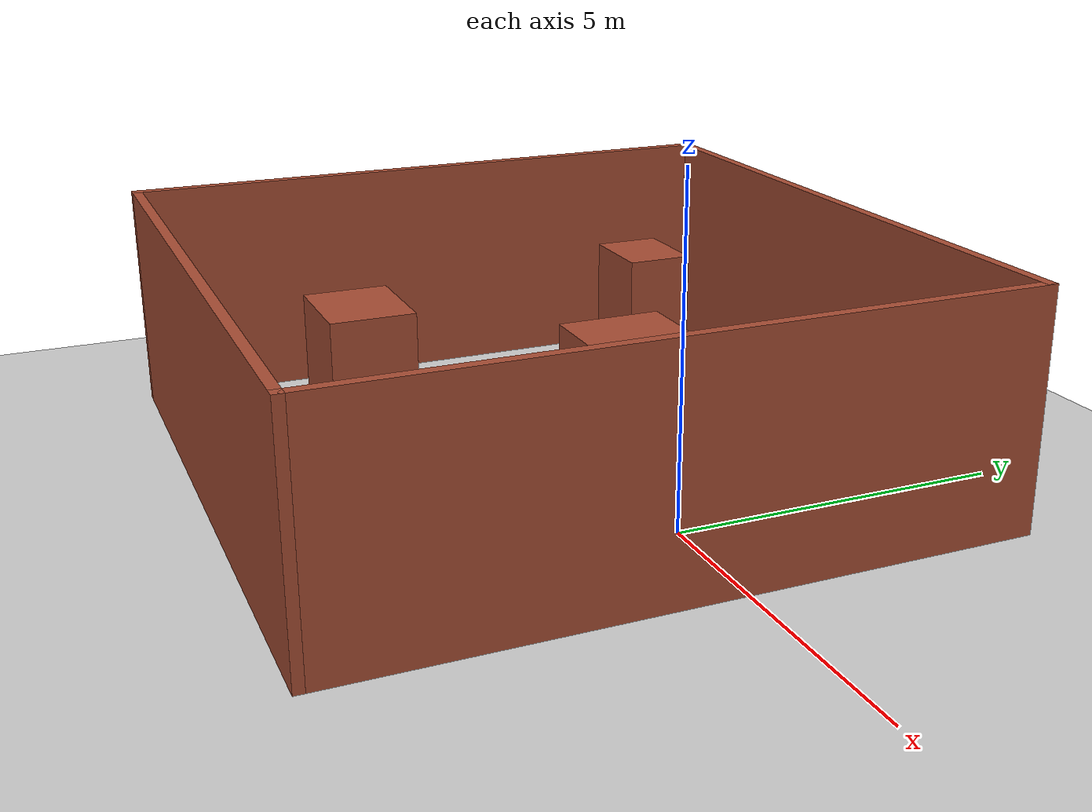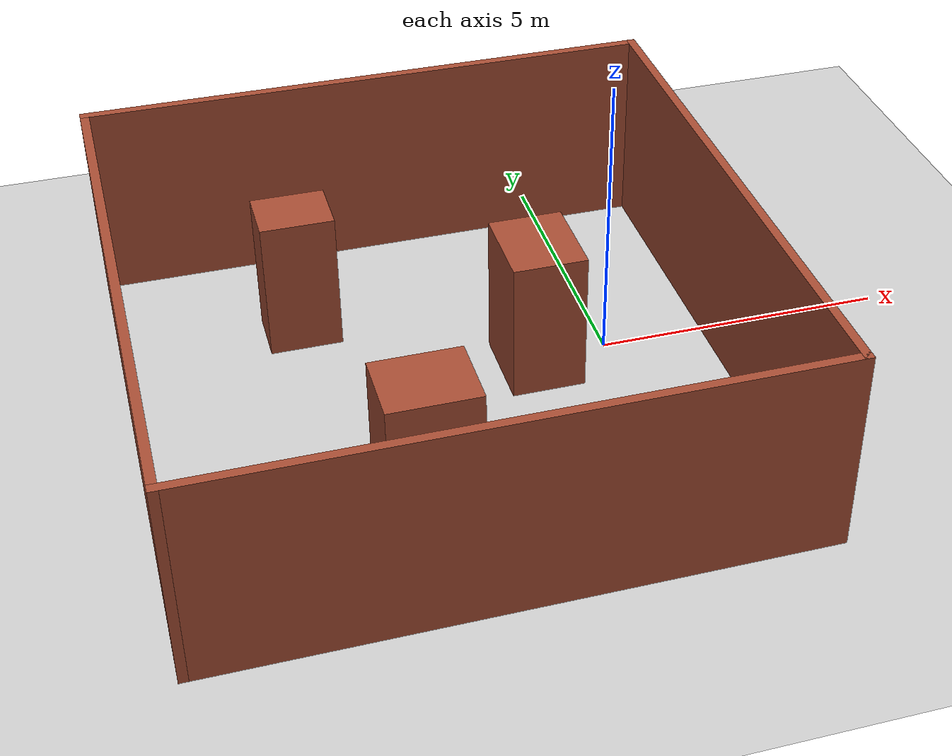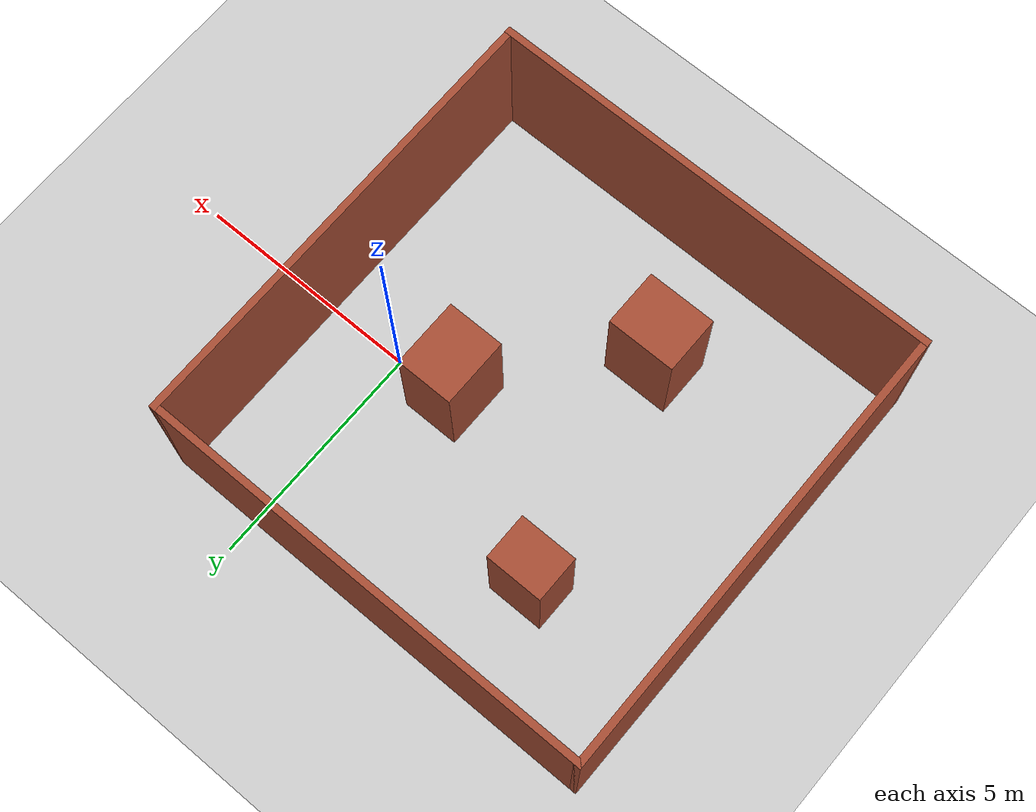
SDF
<sdf version="1.4">
 <world name="default">
  <include><uri>model://ground_plane</uri></include>
  <include><uri>model://sun</uri></include>
  <plugin name="ros_interface_plugin" filename="librotors_gazebo_ros_interface_plugin.so"/>
  <plugin name="ros_rl_interface_plugin" filename="librl_gazebo_interface_plugin.so"/>
  <spherical_coordinates>
   <surface_model>EARTH_WGS84</surface_model>
   <latitude_deg>47.3667</latitude_deg>
   <longitude_deg>8.5500</longitude_deg>
   <elevation>500.0</elevation>
   <heading_deg>0</heading_deg>
  </spherical_coordinates>
  <physics type="ode">
   <ode>
    <solver><type>quick</type><iters>1000</iters><sor>1.3</sor></solver>
    <constraints>
     <cfm>0</cfm>
     <erp>0.2</erp>
     <contact_max_correcting_vel>100</contact_max_correcting_vel>
     <contact_surface_layer>0.001</contact_surface_layer>
    </constraints>
   </ode>
   <max_step_size>0.01</max_step_size>
   <real_time_factor>1</real_time_factor>
   <real_time_update_rate>100</real_time_update_rate>
   <gravity>0 0 -9.8</gravity>
  </physics>
  <include><uri>model://house_6</uri></include>
 </world>
</sdf>

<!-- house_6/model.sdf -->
<sdf version='1.5'>
  <model name='house_6'>
    <pose frame=''>-3.086 -0.702 0 0 -0 0</pose>
    <link name='Wall_10'>
      <collision name='Wall_10_Collision'>
        <geometry>
          <box>
            <size>1.5 1.25 2.5</size>
          </box>
        </geometry>
        <pose frame=''>0 0 1.25 0 -0 0</pose>
      </collision>
      <visual name='Wall_10_Visual'>
        <pose frame=''>0 0 1.25 0 -0 0</pose>
        <geometry>
          <box>
            <size>1.5 1.25 2.5</size>
          </box>
        </geometry>
        <material>
          <script>
            <uri>file://media/materials/scripts/gazebo.material</uri>
            <name>Gazebo/Bricks</name>
          </script>
          <ambient>1 1 1 1</ambient>
        </material>
      </visual>
      <pose frame=''>1.80293 0.523428 0 0 0 -1.5708</pose>
    </link>
    <link name='Wall_12'>
      <collision name='Wall_12_Collision'>
        <geometry>
          <box>
            <size>1.5 1.25 2.5</size>
          </box>
        </geometry>
        <pose frame=''>0 0 1.25 0 -0 0</pose>
      </collision>
      <visual name='Wall_12_Visual'>
        <pose frame=''>0 0 1.25 0 -0 0</pose>
        <geometry>
          <box>
            <size>1.5 1.25 2.5</size>
          </box>
        </geometry>
        <material>
          <script>
            <uri>file://media/materials/scripts/gazebo.material</uri>
            <name>Gazebo/Bricks</name>
          </script>
          <ambient>1 1 1 1</ambient>
        </material>
      </visual>
      <pose frame=''>-0.821768 -2.49349 0 0 -0 3.14159</pose>
    </link>
    <link name='Wall_3'>
      <collision name='Wall_3_Collision'>
        <geometry>
          <box>
            <size>10 0.15 3.5</size>
          </box>
        </geometry>
        <pose frame=''>0 0 1.75 0 -0 0</pose>
      </collision>
      <visual name='Wall_3_Visual'>
        <pose frame=''>0 0 1.75 0 -0 0</pose>
        <geometry>
          <box>
            <size>10 0.15 3.5</size>
          </box>
        </geometry>
        <material>
          <script>
            <uri>file://media/materials/scripts/gazebo.material</uri>
            <name>Gazebo/Bricks</name>
          </script>
          <ambient>1 1 1 1</ambient>
        </material>
      </visual>
      <pose frame=''>-0 4.925 0 0 -0 0</pose>
    </link>
    <link name='Wall_4'>
      <collision name='Wall_4_Collision'>
        <geometry>
          <box>
            <size>10 0.15 3.5</size>
          </box>
        </geometry>
        <pose frame=''>0 0 1.75 0 -0 0</pose>
      </collision>
      <visual name='Wall_4_Visual'>
        <pose frame=''>0 0 1.75 0 -0 0</pose>
        <geometry>
          <box>
            <size>10 0.15 3.5</size>
          </box>
        </geometry>
        <material>
          <script>
            <uri>file://media/materials/scripts/gazebo.material</uri>
            <name>Gazebo/Bricks</name>
          </script>
          <ambient>1 1 1 1</ambient>
        </material>
      </visual>
      <pose frame=''>4.925 0 0 0 0 -1.5708</pose>
    </link>
    <link name='Wall_5'>
      <collision name='Wall_5_Collision'>
        <geometry>
          <box>
            <size>10 0.15 3.5</size>
          </box>
        </geometry>
        <pose frame=''>0 0 1.75 0 -0 0</pose>
      </collision>
      <visual name='Wall_5_Visual'>
        <pose frame=''>0 0 1.75 0 -0 0</pose>
        <geometry>
          <box>
            <size>10 0.15 3.5</size>
          </box>
        </geometry>
        <material>
          <script>
            <uri>file://media/materials/scripts/gazebo.material</uri>
            <name>Gazebo/Bricks</name>
          </script>
          <ambient>1 1 1 1</ambient>
        </material>
      </visual>
      <pose frame=''>-0 -4.925 0 0 -0 3.14159</pose>
    </link>
    <link name='Wall_6'>
      <collision name='Wall_6_Collision'>
        <geometry>
          <box>
            <size>10 0.15 3.5</size>
          </box>
        </geometry>
        <pose frame=''>0 0 1.75 0 -0 0</pose>
      </collision>
      <visual name='Wall_6_Visual'>
        <pose frame=''>0 0 1.75 0 -0 0</pose>
        <geometry>
          <box>
            <size>10 0.15 3.5</size>
          </box>
        </geometry>
        <material>
          <script>
            <uri>file://media/materials/scripts/gazebo.material</uri>
            <name>Gazebo/Bricks</name>
          </script>
          <ambient>1 1 1 1</ambient>
        </material>
      </visual>
      <pose frame=''>-4.925 0 0 0 -0 1.5708</pose>
    </link>
    <link name='Wall_8'>
      <collision name='Wall_8_Collision'>
        <geometry>
          <box>
            <size>1.25 1 2.5</size>
          </box>
        </geometry>
        <pose frame=''>0 0 1.25 0 -0 0</pose>
      </collision>
      <visual name='Wall_8_Visual'>
        <pose frame=''>0 0 1.25 0 -0 0</pose>
        <geometry>
          <box>
            <size>1.25 1 2.5</size>
          </box>
        </geometry>
        <material>
          <script>
            <uri>file://media/materials/scripts/gazebo.material</uri>
            <name>Gazebo/Bricks</name>
          </script>
          <ambient>1 1 1 1</ambient>
        </material>
      </visual>
      <pose frame=''>-1.86686 2.54875 0 0 -0 0</pose>
    </link>
    <static>1</static>
  </model>
</sdf>
